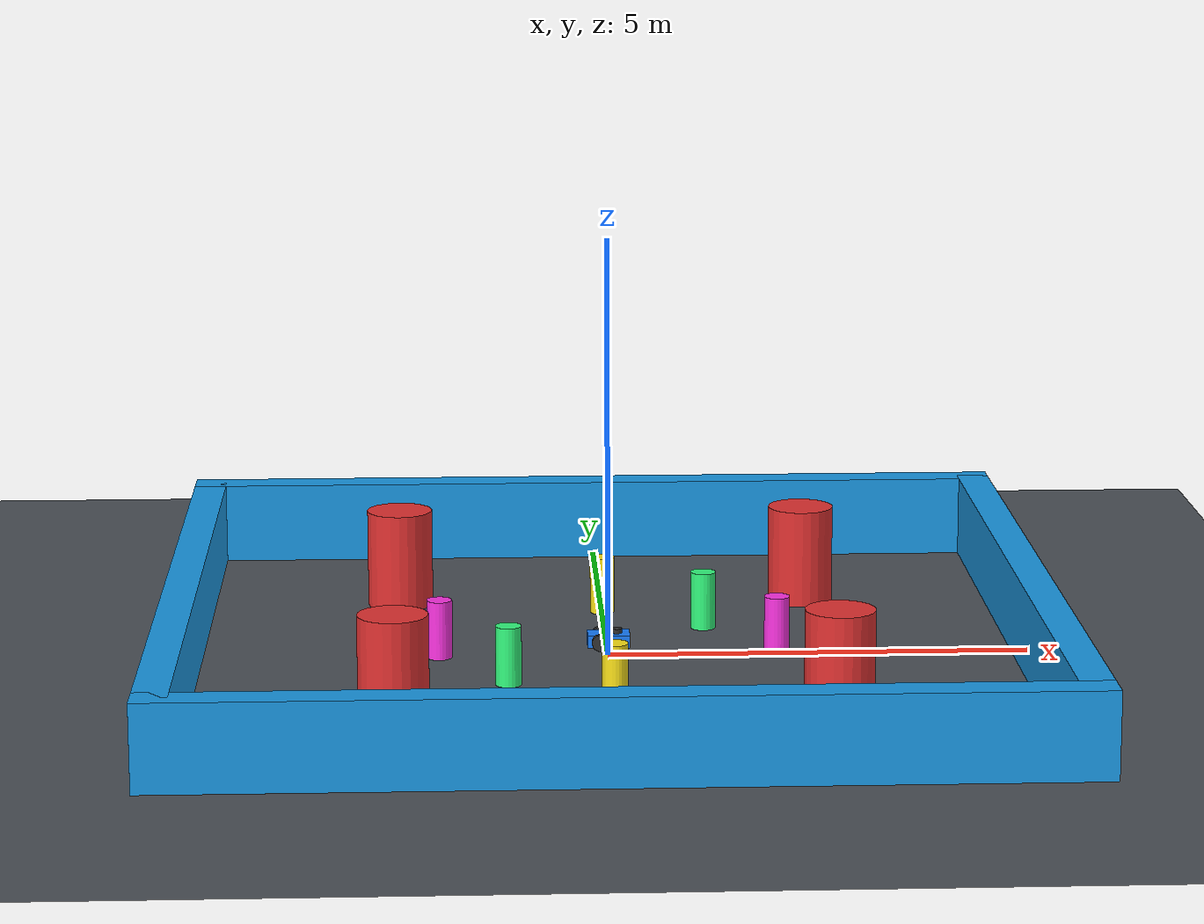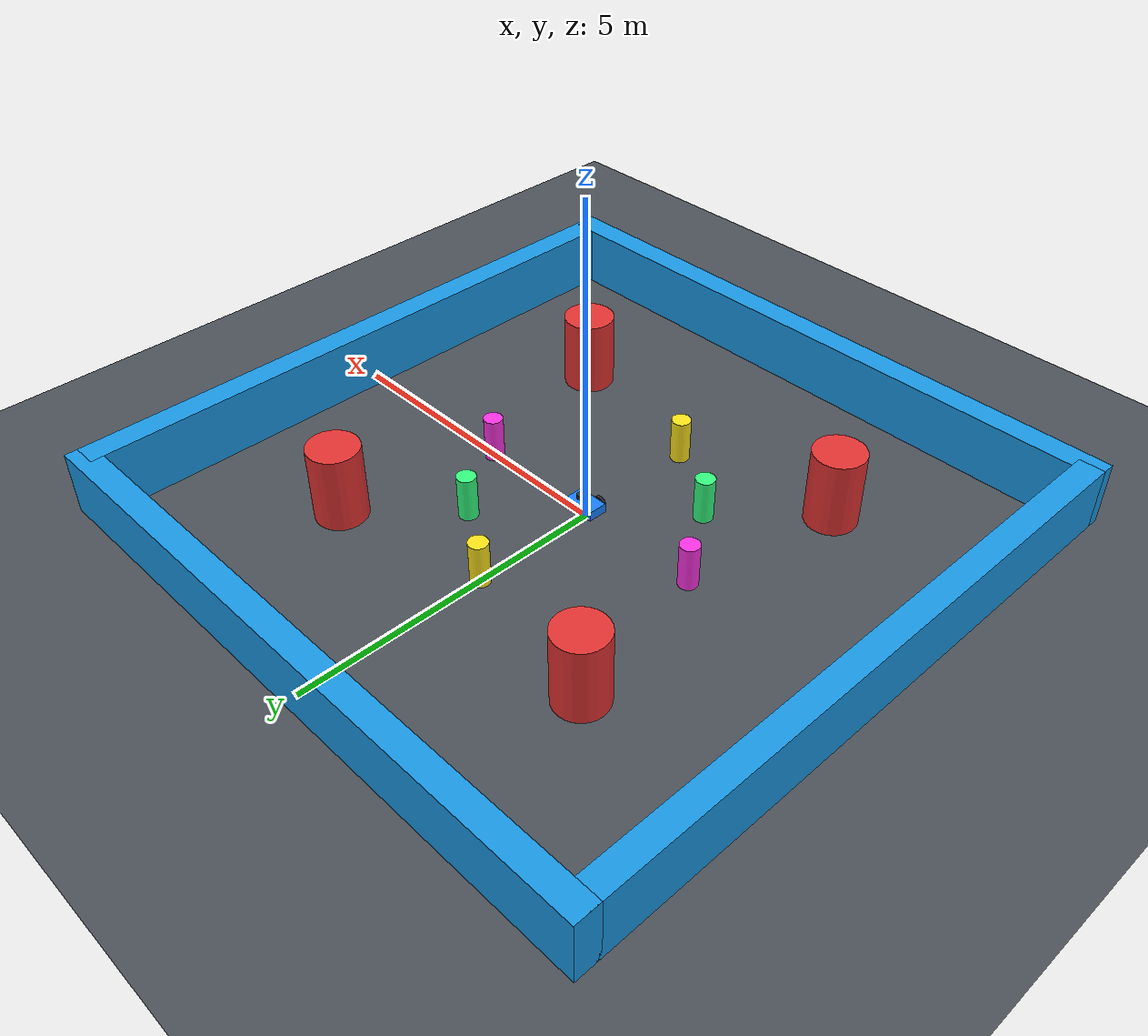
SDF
<?xml version="1.0" ?>
<sdf version="1.8">
  <world name="arena_game_world">
    <!-- 1. PLUGINS ESSENCIAIS DO GAZEBO HARMONIC -->
    <physics name="1ms" type="ignored">
      <max_step_size>0.001</max_step_size>
      <real_time_factor>1.0</real_time_factor>
    </physics>

    <plugin filename="gz-sim-physics-system" name="gz::sim::systems::Physics" />
    <plugin filename="gz-sim-user-commands-system" name="gz::sim::systems::UserCommands" />
    <plugin filename="gz-sim-scene-broadcaster-system" name="gz::sim::systems::SceneBroadcaster" />
    <plugin filename="gz-sim-sensors-system" name="gz::sim::systems::Sensors">
      <render_engine>ogre2</render_engine>
    </plugin>

    <!-- 2. ILUMINAÇÃO & SOL -->
    <light type="directional" name="sun">
      <cast_shadows>true</cast_shadows>
      <pose>0 0 10 0 0 0</pose>
      <diffuse>0.9 0.9 0.9 1</diffuse>
      <specular>0.3 0.3 0.3 1</specular>
      <direction>-0.5 0.1 -0.9</direction>
    </light>

    <!-- 3. CHÃO DA ARENA (PISO CINZA ESCURO) -->
    <model name="ground_plane">
      <static>true</static>
      <link name="link">
        <collision name="collision">
          <geometry>
            <plane>
              <normal>0 0 1</normal>
              <size>20 20</size>
            </plane>
          </geometry>
          <surface>
            <friction>
              <ode>
                <mu>1.0</mu>
                <mu2>1.0</mu2>
              </ode>
            </friction>
          </surface>
        </collision>
        <visual name="visual">
          <geometry>
            <plane>
              <normal>0 0 1</normal>
              <size>20 20</size>
            </plane>
          </geometry>
          <material>
            <ambient>0.2 0.22 0.25 1</ambient>
            <diffuse>0.3 0.32 0.35 1</diffuse>
          </material>
        </visual>
      </link>
    </model>

    <!-- 4. PAREDES DE PROTEÇÃO DA ARENA (10m x 10m) -->
    <model name="arena_walls">
      <static>true</static>
      <link name="walls">
        <!-- Parede Norte -->
        <collision name="wall_n_col"><pose>0 5 0.5 0 0 0</pose><geometry><box><size>10.4 0.4 1.0</size></box></geometry></collision>
        <visual name="wall_n_vis"><pose>0 5 0.5 0 0 0</pose><geometry><box><size>10.4 0.4 1.0</size></box></geometry><material><ambient>0.1 0.5 0.8 1</ambient><diffuse>0.1 0.6 0.9 1</diffuse></material></visual>

        <!-- Parede Sul -->
        <collision name="wall_s_col"><pose>0 -5 0.5 0 0 0</pose><geometry><box><size>10.4 0.4 1.0</size></box></geometry></collision>
        <visual name="wall_s_vis"><pose>0 -5 0.5 0 0 0</pose><geometry><box><size>10.4 0.4 1.0</size></box></geometry><material><ambient>0.1 0.5 0.8 1</ambient><diffuse>0.1 0.6 0.9 1</diffuse></material></visual>

        <!-- Parede Leste -->
        <collision name="wall_e_col"><pose>5 0 0.5 0 0 0</pose><geometry><box><size>0.4 10.0 1.0</size></box></geometry></collision>
        <visual name="wall_e_vis"><pose>5 0 0.5 0 0 0</pose><geometry><box><size>0.4 10.0 1.0</size></box></geometry><material><ambient>0.1 0.5 0.8 1</ambient><diffuse>0.1 0.6 0.9 1</diffuse></material></visual>

        <!-- Parede Oeste -->
        <collision name="wall_w_col"><pose>-5 0 0.5 0 0 0</pose><geometry><box><size>0.4 10.0 1.0</size></box></geometry></collision>
        <visual name="wall_w_vis"><pose>-5 0 0.5 0 0 0</pose><geometry><box><size>0.4 10.0 1.0</size></box></geometry><material><ambient>0.1 0.5 0.8 1</ambient><diffuse>0.1 0.6 0.9 1</diffuse></material></visual>
      </link>
    </model>

    <!-- 5. PILARES ESTÁTICOS / OBSTÁCULOS (VERMELHOS) -->
    <model name="pillar_nw"><static>true</static><pose>-2.5 2.5 0.6 0 0 0</pose><link name="l"><collision name="c"><geometry><cylinder><radius>0.4</radius><length>1.2</length></cylinder></geometry></collision><visual name="v"><geometry><cylinder><radius>0.4</radius><length>1.2</length></cylinder></geometry><material><ambient>0.8 0.1 0.1 1</ambient><diffuse>0.9 0.2 0.2 1</diffuse></material></visual></link></model>
    <model name="pillar_ne"><static>true</static><pose>2.5 2.5 0.6 0 0 0</pose><link name="l"><collision name="c"><geometry><cylinder><radius>0.4</radius><length>1.2</length></cylinder></geometry></collision><visual name="v"><geometry><cylinder><radius>0.4</radius><length>1.2</length></cylinder></geometry><material><ambient>0.8 0.1 0.1 1</ambient><diffuse>0.9 0.2 0.2 1</diffuse></material></visual></link></model>
    <model name="pillar_sw"><static>true</static><pose>-2.5 -2.5 0.6 0 0 0</pose><link name="l"><collision name="c"><geometry><cylinder><radius>0.4</radius><length>1.2</length></cylinder></geometry></collision><visual name="v"><geometry><cylinder><radius>0.4</radius><length>1.2</length></cylinder></geometry><material><ambient>0.8 0.1 0.1 1</ambient><diffuse>0.9 0.2 0.2 1</diffuse></material></visual></link></model>
    <model name="pillar_se"><static>true</static><pose>2.5 -2.5 0.6 0 0 0</pose><link name="l"><collision name="c"><geometry><cylinder><radius>0.4</radius><length>1.2</length></cylinder></geometry></collision><visual name="v"><geometry><cylinder><radius>0.4</radius><length>1.2</length></cylinder></geometry><material><ambient>0.8 0.1 0.1 1</ambient><diffuse>0.9 0.2 0.2 1</diffuse></material></visual></link></model>

    <!-- 6. ALVOS DINÂMICOS / PINOS DERRUBÁVEIS (AMARELOS E MAGENTA) -->
    <model name="target_pin_1"><pose>0 2.0 0.35 0 0 0</pose><link name="l"><inertial><mass>0.4</mass><inertia><ixx>0.01</ixx><iyy>0.01</iyy><izz>0.005</izz></inertia></inertial><collision name="c"><geometry><cylinder><radius>0.15</radius><length>0.7</length></cylinder></geometry></collision><visual name="v"><geometry><cylinder><radius>0.15</radius><length>0.7</length></cylinder></geometry><material><ambient>0.9 0.8 0.1 1</ambient><diffuse>1.0 0.9 0.1 1</diffuse></material></visual></link></model>
    <model name="target_pin_2"><pose>0 -2.0 0.35 0 0 0</pose><link name="l"><inertial><mass>0.4</mass><inertia><ixx>0.01</ixx><iyy>0.01</iyy><izz>0.005</izz></inertia></inertial><collision name="c"><geometry><cylinder><radius>0.15</radius><length>0.7</length></cylinder></geometry></collision><visual name="v"><geometry><cylinder><radius>0.15</radius><length>0.7</length></cylinder></geometry><material><ambient>0.9 0.8 0.1 1</ambient><diffuse>1.0 0.9 0.1 1</diffuse></material></visual></link></model>
    <model name="target_pin_3"><pose>2.0 0 0.35 0 0 0</pose><link name="l"><inertial><mass>0.4</mass><inertia><ixx>0.01</ixx><iyy>0.01</iyy><izz>0.005</izz></inertia></inertial><collision name="c"><geometry><cylinder><radius>0.15</radius><length>0.7</length></cylinder></geometry></collision><visual name="v"><geometry><cylinder><radius>0.15</radius><length>0.7</length></cylinder></geometry><material><ambient>0.9 0.1 0.8 1</ambient><diffuse>1.0 0.2 0.9 1</diffuse></material></visual></link></model>
    <model name="target_pin_4"><pose>-2.0 0 0.35 0 0 0</pose><link name="l"><inertial><mass>0.4</mass><inertia><ixx>0.01</ixx><iyy>0.01</iyy><izz>0.005</izz></inertia></inertial><collision name="c"><geometry><cylinder><radius>0.15</radius><length>0.7</length></cylinder></geometry></collision><visual name="v"><geometry><cylinder><radius>0.15</radius><length>0.7</length></cylinder></geometry><material><ambient>0.9 0.1 0.8 1</ambient><diffuse>1.0 0.2 0.9 1</diffuse></material></visual></link></model>
    <model name="target_pin_5"><pose>1.2 1.2 0.35 0 0 0</pose><link name="l"><inertial><mass>0.4</mass><inertia><ixx>0.01</ixx><iyy>0.01</iyy><izz>0.005</izz></inertia></inertial><collision name="c"><geometry><cylinder><radius>0.15</radius><length>0.7</length></cylinder></geometry></collision><visual name="v"><geometry><cylinder><radius>0.15</radius><length>0.7</length></cylinder></geometry><material><ambient>0.1 0.9 0.4 1</ambient><diffuse>0.2 1.0 0.5 1</diffuse></material></visual></link></model>
    <model name="target_pin_6"><pose>-1.2 -1.2 0.35 0 0 0</pose><link name="l"><inertial><mass>0.4</mass><inertia><ixx>0.01</ixx><iyy>0.01</iyy><izz>0.005</izz></inertia></inertial><collision name="c"><geometry><cylinder><radius>0.15</radius><length>0.7</length></cylinder></geometry></collision><visual name="v"><geometry><cylinder><radius>0.15</radius><length>0.7</length></cylinder></geometry><material><ambient>0.1 0.9 0.4 1</ambient><diffuse>0.2 1.0 0.5 1</diffuse></material></visual></link></model>

    <!-- 7. O ROBÔ EXPLORADOR / JOGADOR (GAME BOT) -->
    <model name="game_bot">
      <pose>0 0 0.15 0 0 0</pose>

      <!-- Chassis Central (Azul Metálico) -->
      <link name="chassis">
        <pose>0 0 0.05 0 0 0</pose>
        <inertial>
          <mass>2.5</mass>
          <inertia>
            <ixx>0.02</ixx><ixy>0</ixy><ixz>0</ixz>
            <iyy>0.02</iyy><iyz>0</iyz>
            <izz>0.03</izz>
          </inertia>
        </inertial>
        <collision name="chassis_col">
          <geometry><box><size>0.5 0.3 0.15</size></box></geometry>
        </collision>
        <visual name="chassis_vis">
          <geometry><box><size>0.5 0.3 0.15</size></box></geometry>
          <material>
            <ambient>0.05 0.3 0.8 1</ambient>
            <diffuse>0.1 0.5 1.0 1</diffuse>
          </material>
        </visual>

        <!-- Roda Boba Dianteira (Caster) -->
        <collision name="caster_col">
          <pose>0.18 0 -0.05 0 0 0</pose>
          <geometry><sphere><radius>0.05</radius></sphere></geometry>
          <surface><friction><ode><mu>0.0</mu><mu2>0.0</mu2></ode></friction></surface>
        </collision>
        <visual name="caster_vis">
          <pose>0.18 0 -0.05 0 0 0</pose>
          <geometry><sphere><radius>0.05</radius></sphere></geometry>
          <material><ambient>0.8 0.8 0.8 1</ambient><diffuse>0.9 0.9 0.9 1</diffuse></material>
        </visual>

        <!-- Sensor LiDAR GPU no topo -->
        <sensor name="lidar" type="gpu_lidar">
          <pose>0.1 0 0.12 0 0 0</pose>
          <topic>scan</topic>
          <update_rate>15</update_rate>
          <ray>
            <scan>
              <horizontal>
                <samples>180</samples>
                <resolution>1</resolution>
                <min_angle>-1.570796</min_angle>
                <max_angle>1.570796</max_angle>
              </horizontal>
            </scan>
            <range>
              <min>0.12</min>
              <max>8.0</max>
              <resolution>0.01</resolution>
            </range>
          </ray>
          <always_on>1</always_on>
          <visualize>true</visualize>
        </sensor>
        <visual name="lidar_vis">
          <pose>0.1 0 0.1 0 0 0</pose>
          <geometry><cylinder><radius>0.06</radius><length>0.06</length></cylinder></geometry>
          <material><ambient>0.1 0.1 0.1 1</ambient><diffuse>0.2 0.2 0.2 1</diffuse></material>
        </visual>
      </link>

      <!-- Roda Esquerda -->
      <link name="left_wheel">
        <pose>-0.1 0.18 0.05 -1.570796 0 0</pose>
        <inertial><mass>0.6</mass><inertia><ixx>0.001</ixx><iyy>0.001</iyy><izz>0.002</izz></inertia></inertial>
        <collision name="c"><geometry><cylinder><radius>0.1</radius><length>0.05</length></cylinder></geometry><surface><friction><ode><mu>1.2</mu><mu2>1.2</mu2></ode></friction></surface></collision>
        <visual name="v"><geometry><cylinder><radius>0.1</radius><length>0.05</length></cylinder></geometry><material><ambient>0.1 0.1 0.1 1</ambient><diffuse>0.2 0.2 0.2 1</diffuse></material></visual>
      </link>

      <!-- Roda Direita -->
      <link name="right_wheel">
        <pose>-0.1 -0.18 0.05 -1.570796 0 0</pose>
        <inertial><mass>0.6</mass><inertia><ixx>0.001</ixx><iyy>0.001</iyy><izz>0.002</izz></inertia></inertial>
        <collision name="c"><geometry><cylinder><radius>0.1</radius><length>0.05</length></cylinder></geometry><surface><friction><ode><mu>1.2</mu><mu2>1.2</mu2></ode></friction></surface></collision>
        <visual name="v"><geometry><cylinder><radius>0.1</radius><length>0.05</length></cylinder></geometry><material><ambient>0.1 0.1 0.1 1</ambient><diffuse>0.2 0.2 0.2 1</diffuse></material></visual>
      </link>

      <!-- Juntas das Rodas -->
      <joint name="left_wheel_joint" type="revolute">
        <parent>chassis</parent>
        <child>left_wheel</child>
        <axis><xyz>0 0 1</xyz><limit><lower>-1e16</lower><upper>1e16</upper></limit></axis>
      </joint>

      <joint name="right_wheel_joint" type="revolute">
        <parent>chassis</parent>
        <child>right_wheel</child>
        <axis><xyz>0 0 1</xyz><limit><lower>-1e16</lower><upper>1e16</upper></limit></axis>
      </joint>

      <!-- Plugin de Tração Diferencial do Gazebo -->
      <plugin filename="gz-sim-diff-drive-system" name="gz::sim::systems::DiffDrive">
        <left_joint>left_wheel_joint</left_joint>
        <right_joint>right_wheel_joint</right_joint>
        <wheel_separation>0.36</wheel_separation>
        <wheel_radius>0.1</wheel_radius>
        <max_linear_acceleration>2.0</max_linear_acceleration>
        <min_linear_acceleration>-2.0</min_linear_acceleration>
        <max_angular_acceleration>4.0</max_angular_acceleration>
        <min_angular_acceleration>-4.0</min_angular_acceleration>
        <topic>/cmd_vel</topic>
        <odom_topic>/odom</odom_topic>
        <tf_topic>/tf</tf_topic>
        <frame_id>odom</frame_id>
        <child_frame_id>chassis</child_frame_id>
      </plugin>
    </model>
  </world>
</sdf>
